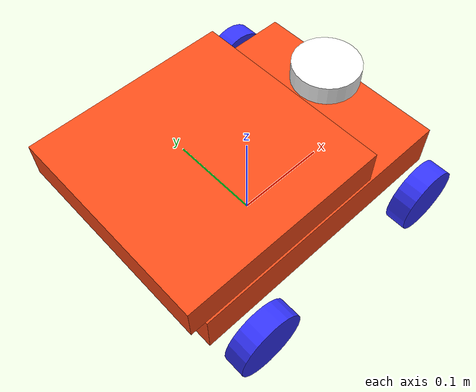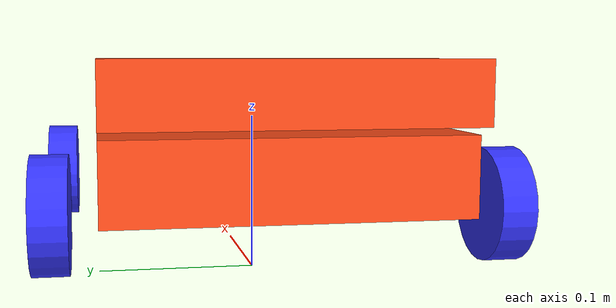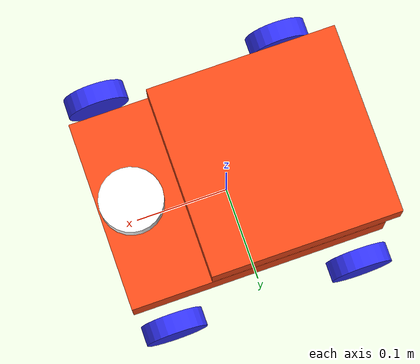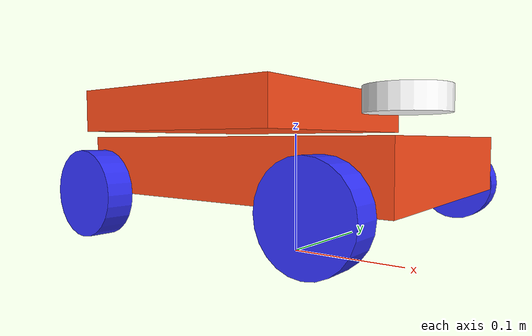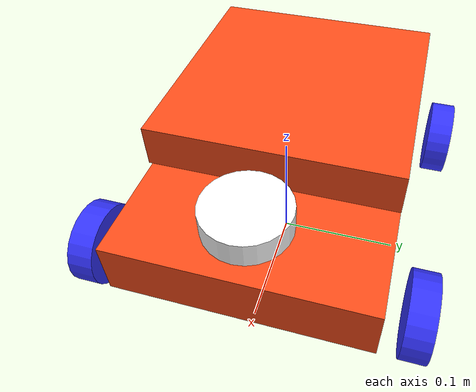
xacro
<?xml version="1.0"?>
<robot name="rosbot" xmlns:xacro="http://www.ros.org/wiki/xacro">

    <xacro:arg name="is_sim" default="true"/>

    <xacro:include filename="inertial_macros.xacro"/>

    <!-- Include gazebo_control.xacro and pass the namespace argument -->
    <xacro:include filename="ros2_control.xacro"/>

    <material name="white">
        <color rgba="1 1 1 1" />
    </material>

    <material name="orange">
        <color rgba="1 0.3 0.1 1"/>
    </material>

    <material name="blue">
        <color rgba="0.2 0.2 1 1"/>
    </material>

    <material name="black">
        <color rgba="0 0 0 1"/>
    </material>

  <!-- BASE FOOTPRINT (Virtual link for TF tree) -->
  <link name="base_footprint"/>

  <!-- MAIN BASE LINK -->
  <link name="base_link">
    <visual>
      <geometry>
          <box size="0.27 0.200 0.045"/>
      </geometry>
      <material name="orange"/>
    </visual>
    <collision>
      <geometry>
        <box size="0.27 0.200 0.045"/>  <!-- Simple collision shape -->
      </geometry>
    </collision>
      <xacro:inertial_box mass="0.5" x="0.3" y="0.3" z="0.15">
          <origin xyz="0 0 0" rpy="0 0 0"/>
      </xacro:inertial_box>
  </link>

  <!--  BASE FOOTPRINT JOINT -->
  <joint name="base_joint" type="fixed">
    <parent link="base_footprint"/>
    <child link="base_link"/>
    <origin xyz="0 0 0.075" rpy="0 0 0"/>
  </joint>

    <!-- 2nd BASE LINK -->
  <link name="base_link_2">
    <visual>
      <geometry>
          <box size="0.20 0.20 0.035"/>
      </geometry>
      <material name="orange"/>
    </visual>
    <collision>
      <geometry>
        <box size="0.20 0.20 0.035"/>  <!-- Simple collision shape -->
      </geometry>
    </collision>
      <xacro:inertial_box mass="0.5" x="0.3" y="0.3" z="0.15">
          <origin xyz="0 0 0" rpy="0 0 0"/>
      </xacro:inertial_box>
  </link>

  <!-- BASE FOOTPRINT JOINT -->
  <joint name="base2_joint" type="fixed">
    <parent link="base_footprint"/>
    <child link="base_link_2"/>
    <origin xyz="-0.05 0 0.120" rpy="0 0 0"/>
  </joint>

  <!-- FRONT LEFT WHEEL -->
  <link name="front_left_wheel">
    <visual>
      <geometry>
          <cylinder radius="0.0325" length="0.02"/>
      </geometry>
        <material name="blue"/>
    </visual>
    <collision>
      <geometry>
        <cylinder radius="0.0325" length="0.02"/>
      </geometry>
    </collision>
      <xacro:inertial_cylinder mass="0.1" length="0.04" radius="0.05">
          <origin xyz="0 0 0" rpy="0 0 0"/>
      </xacro:inertial_cylinder>
  </link>

  <joint name="front_left_wheel_joint" type="fixed">
    <parent link="base_link"/>
    <child link="front_left_wheel"/>
    <origin xyz="0.1 0.125 -0.02" rpy="1.5708 0 0"/>
  </joint>

  <!--  FRONT RIGHT WHEEL (Mirror of left) -->
  <link name="front_right_wheel">
    <visual>
      <geometry>
          <cylinder radius="0.0325" length="0.02"/>
      </geometry>
        <material name="blue"/>
    </visual>
    <collision>
      <geometry>
        <cylinder radius="0.0325" length="0.02"/>
      </geometry>
    </collision>
      <xacro:inertial_cylinder mass="0.1" length="0.04" radius="0.05">
          <origin xyz="0 0 0" rpy="0 0 0"/>
        </xacro:inertial_cylinder>
  </link>

  <joint name="front_right_wheel_joint" type="fixed">
    <parent link="base_link"/>
    <child link="front_right_wheel"/>
    <origin xyz="0.1 -0.125 -0.02" rpy="1.5708 0 0"/>
  </joint>

  <!--  REAR LEFT WHEEL (Continuous joint) -->
  <link name="rear_left_wheel">
    <visual>
      <geometry>
          <cylinder radius="0.0325" length="0.02"/>
      </geometry>
        <material name="blue"/>
    </visual>
    <collision>
      <geometry>
        <cylinder radius="0.0325" length="0.02"/>
      </geometry>
    </collision>
      <xacro:inertial_cylinder mass="0.1" length="0.04" radius="0.05">
          <origin xyz="0 0 0" rpy="0 0 0"/>
      </xacro:inertial_cylinder>
  </link>

  <joint name="rear_left_wheel_joint" type="continuous">
    <parent link="base_link"/>
    <child link="rear_left_wheel"/>
    <origin xyz="-0.1 0.125 -0.02" rpy="1.5708 0 3.1416"/>
    <axis xyz="0 0 1"/>
    <limit effort="50000" velocity="10"/>
    <dynamics damping="1.0" friction="1.0"/>
  </joint>

  <!-- REAR RIGHT WHEEL (Continuous joint) -->
  <link name="rear_right_wheel">
    <visual>
      <geometry>
        <cylinder radius="0.0325" length="0.02"/>
      </geometry>
        <material name="blue"/>
    </visual>
    <collision>
      <geometry>
        <cylinder radius="0.0325" length="0.02"/>
      </geometry>
    </collision>
      <xacro:inertial_cylinder mass="0.1" length="0.04" radius="0.05">
           <origin xyz="0 0 0" rpy="0 0 0"/>
      </xacro:inertial_cylinder>
  </link>

  <joint name="rear_right_wheel_joint" type="continuous">
    <parent link="base_link"/>
    <child link="rear_right_wheel"/>
    <origin xyz="-0.1 -0.125 -0.02" rpy="1.5708 0 3.1416"/>
    <axis xyz="0 0 1"/>
    <limit effort="50000" velocity="10"/>
    <dynamics damping="1.0" friction="1.0"/>
  </joint>

  <!--lidar-->
  <link name="laser_link">
    <visual>
      <geometry>
         <cylinder radius="0.033" length="0.02"/>
      </geometry>
      <material name="white"/>
      <origin xyz="0 0 0" rpy="0 0 0"/>
    </visual>
    <collision>
        <geometry>
            <cylinder radius="0.033" length="0.02"/>
        </geometry>
    </collision>
      <xacro:inertial_cylinder mass="0.1" length="0.04" radius="0.05">
          <origin xyz="0 0 0" rpy="0 0 0"/>
      </xacro:inertial_cylinder>
  </link>

  <joint name="base_laser_joint" type="fixed">
    <parent link="base_link"/>
    <child link="laser_link"/>
    <origin xyz="0.1 0 0.05" rpy="0 0 0"/>
  </joint>

</robot>
